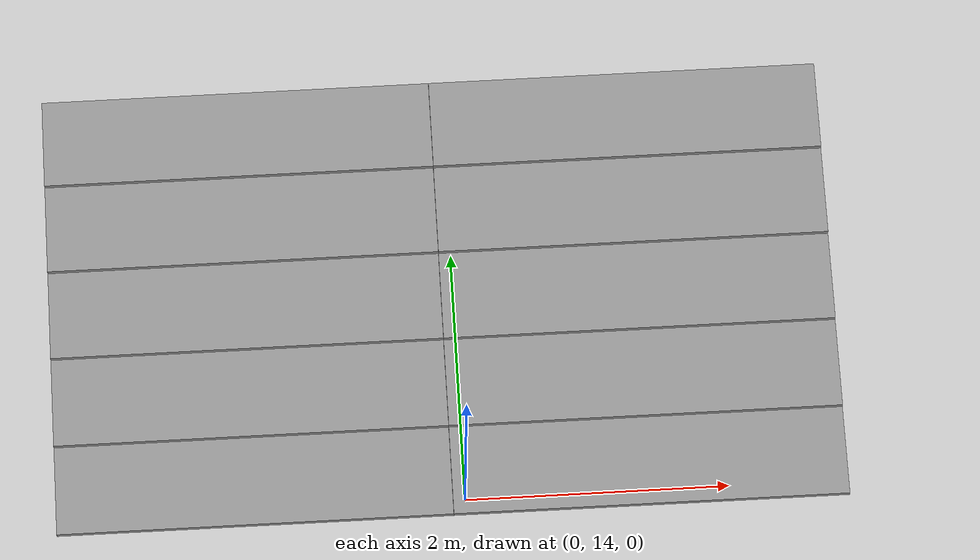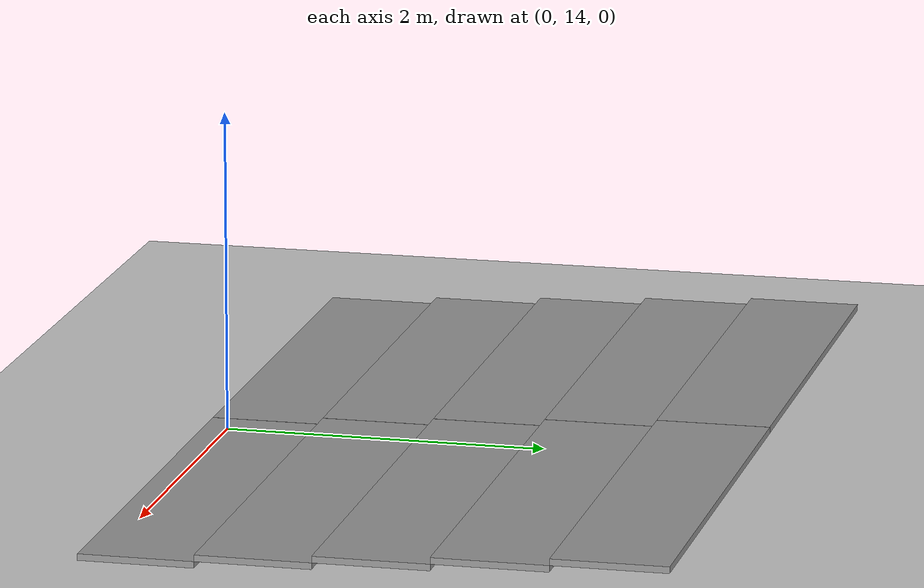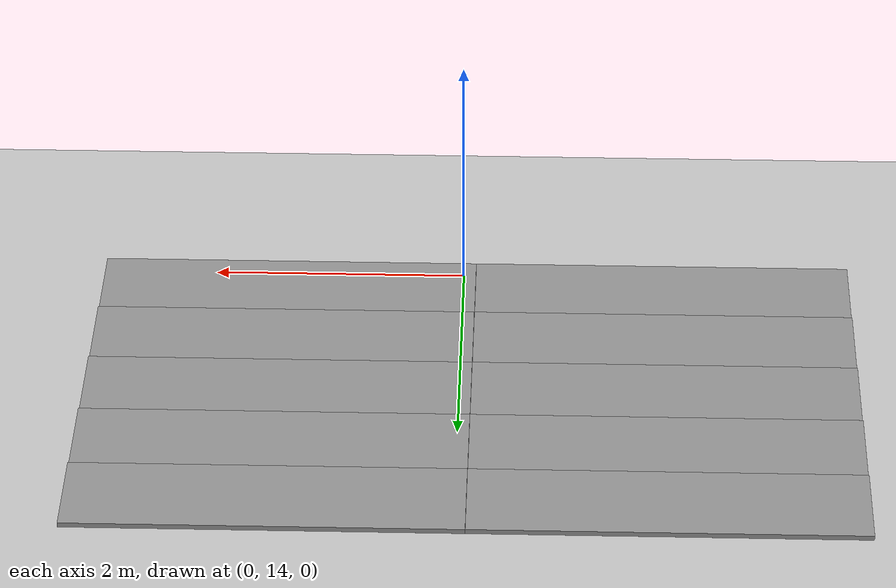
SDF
<sdf version="1.7">
 <world name="world">
  <gravity>0 0 -9.8</gravity>
  <physics name="default_physics" default="0" type="ode">
   <max_step_size>0.001</max_step_size>
   <real_time_factor>1</real_time_factor>
   <real_time_update_rate>1000</real_time_update_rate>
  </physics>
  <scene><ambient>0.6 0.6 0.6 1</ambient><background>0.4 0.4 0.4 1</background><shadows>0</shadows></scene>
  <light name="sun" type="directional">
   <pose>0 0 10 0 -0 0</pose>
   <diffuse>0.8 0.8 0.8 1</diffuse>
   <specular>0.2 0.2 0.2 1</specular>
   <attenuation>
    <range>1000</range>
    <constant>0.9</constant>
    <linear>0.01</linear>
    <quadratic>0.001</quadratic>
   </attenuation>
   <direction>-0.5 0.1 -0.9</direction>
   <spot><inner_angle>0</inner_angle><outer_angle>0</outer_angle><falloff>0</falloff></spot>
  </light>
  <model name="ground_plane">
   <static>1</static>
   <link name="link">
    <collision name="collision">
     <geometry><plane><normal>0 0 1</normal><size>100 100</size></plane></geometry>
     <surface><friction><ode><mu>100</mu><mu2>50</mu2></ode></friction></surface>
    </collision>
    <visual name="visual">
     <cast_shadows>0</cast_shadows>
     <geometry><plane><normal>0 0 1</normal><size>100 100</size></plane></geometry>
     <material>
      <script><uri>file://media/materials/scripts/gazebo.material</uri><name>Gazebo/Grey</name></script>
     </material>
    </visual>
   </link>
   <pose>0 0 -0.1 0 -0 0</pose>
  </model>
  <model name="stair_wide">
   <pose>1.05983 15.2 0 0 -0 3.1415</pose>
   <link name="Stairs_1">
    <visual name="Stairs_1_Visual_0">
     <pose>-0.345 0.97 0.02 0 -0 0</pose>
     <geometry><box><size>3 0.7 0.04</size></box></geometry>
     <material>
      <script><uri>file://media/materials/scripts/gazebo.material</uri><name>Gazebo/Grey</name></script>
      <ambient>1 1 1 1</ambient>
     </material>
     <meta><layer>0</layer></meta>
    </visual>
    <collision name="Stairs_1_Collision_0">
     <geometry><box><size>3 0.7 0.04</size></box></geometry>
     <pose>-0.345 0.97 0.02 0 -0 0</pose>
    </collision>
    <visual name="Stairs_1_Visual_1">
     <pose>-0.345 0.27 0.06 0 -0 0</pose>
     <geometry><box><size>3 0.7 0.04</size></box></geometry>
     <material>
      <script><uri>file://media/materials/scripts/gazebo.material</uri><name>Gazebo/Grey</name></script>
      <ambient>1 1 1 1</ambient>
     </material>
     <meta><layer>0</layer></meta>
    </visual>
    <collision name="Stairs_1_Collision_1">
     <geometry><box><size>3 0.7 0.04</size></box></geometry>
     <pose>-0.345 0.27 0.06 0 -0 0</pose>
    </collision>
    <visual name="Stairs_1_Visual_2">
     <pose>-0.345 -0.43 0.1 0 -0 0</pose>
     <geometry><box><size>3 0.7 0.04</size></box></geometry>
     <material>
      <script><uri>file://media/materials/scripts/gazebo.material</uri><name>Gazebo/Grey</name></script>
      <ambient>1 1 1 1</ambient>
     </material>
     <meta><layer>0</layer></meta>
    </visual>
    <collision name="Stairs_1_Collision_2">
     <geometry><box><size>3 0.7 0.04</size></box></geometry>
     <pose>-0.345 -0.43 0.1 0 -0 0</pose>
    </collision>
    <visual name="Stairs_1_Visual_3">
     <pose>-0.345 -1.13 0.14 0 -0 0</pose>
     <geometry><box><size>3 0.7 0.04</size></box></geometry>
     <material>
      <script><uri>file://media/materials/scripts/gazebo.material</uri><name>Gazebo/Grey</name></script>
      <ambient>1 1 1 1</ambient>
     </material>
     <meta><layer>0</layer></meta>
    </visual>
    <collision name="Stairs_1_Collision_3">
     <geometry><box><size>3 0.7 0.04</size></box></geometry>
     <pose>-0.345 -1.13 0.14 0 -0 0</pose>
    </collision>
    <visual name="Stairs_1_Visual_4">
     <pose>-0.345 -1.83 0.18 0 -0 0</pose>
     <geometry><box><size>3 0.7 0.04</size></box></geometry>
     <material>
      <script><uri>file://media/materials/scripts/gazebo.material</uri><name>Gazebo/Grey</name></script>
      <ambient>1 1 1 1</ambient>
     </material>
     <meta><layer>0</layer></meta>
    </visual>
    <collision name="Stairs_1_Collision_4">
     <geometry><box><size>3 0.7 0.04</size></box></geometry>
     <pose>-0.345 -1.83 0.18 0 -0 0</pose>
    </collision>
   </link>
   <static>1</static>
  </model>
  <model name="CGMClassic_1"/>
  <model name="StorageRack_1"/>
  <model name="CGMClassic_2"/>
  <model name="Chair_1"/>
  <model name="Chair_2"/>
  <model name="Scrubs_1"/>
  <model name="Scrubs_2"/>
  <model name="PatientWheelChair_1"/>
  <model name="Scrubs_3"/>
  <model name="WhiteChipChair_1"/>
  <model name="TrolleyBed_1"/>
  <model name="SurgicalTrolley_1"/>
  <model name="CGMClassic_3"/>
  <model name="PotatoChipChair_1"/>
  <model name="PotatoChipChair_2"/>
  <model name="PotatoChipChair_3"/>
  <model name="PotatoChipChair_4"/>
  <model name="PotatoChipChair_5"/>
  <model name="PotatoChipChair_6"/>
  <model name="PotatoChipChair_7"/>
  <model name="PotatoChipChair_8"/>
  <model name="VisitorKidSit_1"/>
  <model name="FemaleVisitorSit_1"/>
  <model name="AdjTable_1"/>
  <model name="PotatoChipChair_9"/>
  <model name="PotatoChipChair_10"/>
  <model name="PotatoChipChair_11"/>
  <model name="PotatoChipChair_12"/>
  <model name="PotatoChipChair_13"/>
  <model name="PotatoChipChair_14"/>
  <model name="PotatoChipChair_15"/>
  <model name="PotatoChipChair_16"/>
  <model name="MopCart3_1"/>
  <model name="MaleVisitorSit_1"/>
  <model name="Drawer_1"/>
  <model name="Drawer_2"/>
  <model name="OfficeChairBlack_1"/>
  <model name="OfficeChairBlack_2"/>
  <model name="AdjTable_2"/>
  <model name="Drawer_3"/>
  <model name="Drawer_4"/>
  <model name="ElderLadyPatient_1"/>
  <model name="ElderLadyPatient_2"/>
  <model name="CGMClassic_4"/>
  <model name="InstrumentCart1_1"/>
  <model name="ElderMalePatient_1"/>
  <model name="InstrumentCart2_1"/>
  <model name="InstrumentCart2_2"/>
  <model name="MetalCabinet_1"/>
  <model name="MetalCabinet_2"/>
  <model name="CGMClassic_5"/>
  <model name="CGMClassic_6"/>
  <model name="BedTable_1"/>
  <model name="BedTable_2"/>
  <model name="BedsideTable_1"/>
  <model name="AnesthesiaMachine_1"/>
  <model name="TrolleyBedPatient_1"/>
  <model name="Scrubs_4"/>
  <model name="Shower_1"/>
  <model name="Shower_2"/>
  <model name="SurgicalTrolley_2"/>
  <model name="SurgicalTrolley_3"/>
  <model name="SurgicalTrolleyMed_1"/>
  <model name="Scrubs_5"/>
  <model name="InstrumentCart1_2"/>
  <model name="InstrumentCart2_3"/>
  <model name="StorageRackCovered_1"/>
  <model name="StorageRack_2"/>
  <model name="KitchenSink_1"/>
  <model name="KitchenSink_2"/>
  <model name="Toilet_1"/>
  <model name="Toilet_2"/>
  <model name="Toilet_3"/>
  <model name="Toilet_4"/>
  <model name="Toilet_5"/>
  <model name="Toilet_6"/>
  <model name="CGMClassic_7"/>
  <model name="CGMClassic_8"/>
  <model name="MetalCabinet_3"/>
  <model name="MetalCabinet_4"/>
  <model name="ParkingTrolleyMin_1"/>
  <model name="PatientFSit_1"/>
  <model name="MaleVisitorOnPhone_1"/>
  <model name="FemaleVisitor_1"/>
  <model name="MaleVisitorSit_2"/>
  <model name="Scrubs_6"/>
  <model name="MalePatientBed_1"/>
  <model name="CGMClassic_9"/>
  <model name="StorageRackCoverOpen_1"/>
  <model name="StorageRack_3"/>
  <model name="StorageRack_4"/>
  <model name="StorageRackCovered_2"/>
  <model name="FemaleVisitorSit_2"/>
  <model name="InstrumentCart1_3"/>
  <model name="ParkingTrolleyMax_1"/>
  <model name="ElderMalePatient_2"/>
  <model name="Chair_3"/>
  <model name="XRayMachine_1"/>
  <model name="IVStand_1"/>
  <model name="BloodPressureMonitor_1"/>
  <model name="IVStand_2"/>
  <model name="BMWCart_1"/>
  <model name="Scrubs_7"/>
  <model name="BPCart_1"/>
  <model name="BPCart_2"/>
  <model name="BPCart_3"/>
  <model name="BPCart_4"/>
  <model name="VendingMachine_1"/>
  <model name="VendingMachine_2"/>
  <model name="Chair_4"/>
  <magnetic_field>6e-06 2.3e-05 -4.2e-05</magnetic_field>
  <atmosphere type="adiabatic"/>
  <spherical_coordinates>
   <surface_model>EARTH_WGS84</surface_model>
   <latitude_deg>0</latitude_deg>
   <longitude_deg>0</longitude_deg>
   <elevation>0</elevation>
   <heading_deg>0</heading_deg>
  </spherical_coordinates>
  <model name="stair_wide_clone">
   <pose>-1.94192 15.1997 0 0 -0 3.1415</pose>
   <link name="Stairs_1">
    <visual name="Stairs_1_Visual_0">
     <pose>-0.345 0.97 0.02 0 -0 0</pose>
     <geometry><box><size>3 0.7 0.04</size></box></geometry>
     <material>
      <script><uri>file://media/materials/scripts/gazebo.material</uri><name>Gazebo/Grey</name></script>
      <ambient>1 1 1 1</ambient>
     </material>
     <meta><layer>0</layer></meta>
    </visual>
    <collision name="Stairs_1_Collision_0">
     <geometry><box><size>3 0.7 0.04</size></box></geometry>
     <pose>-0.345 0.97 0.02 0 -0 0</pose>
    </collision>
    <visual name="Stairs_1_Visual_1">
     <pose>-0.345 0.27 0.06 0 -0 0</pose>
     <geometry><box><size>3 0.7 0.04</size></box></geometry>
     <material>
      <script><uri>file://media/materials/scripts/gazebo.material</uri><name>Gazebo/Grey</name></script>
      <ambient>1 1 1 1</ambient>
     </material>
     <meta><layer>0</layer></meta>
    </visual>
    <collision name="Stairs_1_Collision_1">
     <geometry><box><size>3 0.7 0.04</size></box></geometry>
     <pose>-0.345 0.27 0.06 0 -0 0</pose>
    </collision>
    <visual name="Stairs_1_Visual_2">
     <pose>-0.345 -0.43 0.1 0 -0 0</pose>
     <geometry><box><size>3 0.7 0.04</size></box></geometry>
     <material>
      <script><uri>file://media/materials/scripts/gazebo.material</uri><name>Gazebo/Grey</name></script>
      <ambient>1 1 1 1</ambient>
     </material>
     <meta><layer>0</layer></meta>
    </visual>
    <collision name="Stairs_1_Collision_2">
     <geometry><box><size>3 0.7 0.04</size></box></geometry>
     <pose>-0.345 -0.43 0.1 0 -0 0</pose>
    </collision>
    <visual name="Stairs_1_Visual_3">
     <pose>-0.345 -1.13 0.14 0 -0 0</pose>
     <geometry><box><size>3 0.7 0.04</size></box></geometry>
     <material>
      <script><uri>file://media/materials/scripts/gazebo.material</uri><name>Gazebo/Grey</name></script>
      <ambient>1 1 1 1</ambient>
     </material>
     <meta><layer>0</layer></meta>
    </visual>
    <collision name="Stairs_1_Collision_3">
     <geometry><box><size>3 0.7 0.04</size></box></geometry>
     <pose>-0.345 -1.13 0.14 0 -0 0</pose>
    </collision>
    <visual name="Stairs_1_Visual_4">
     <pose>-0.345 -1.83 0.18 0 -0 0</pose>
     <geometry><box><size>3 0.7 0.04</size></box></geometry>
     <material>
      <script><uri>file://media/materials/scripts/gazebo.material</uri><name>Gazebo/Grey</name></script>
      <ambient>1 1 1 1</ambient>
     </material>
     <meta><layer>0</layer></meta>
    </visual>
    <collision name="Stairs_1_Collision_4">
     <geometry><box><size>3 0.7 0.04</size></box></geometry>
     <pose>-0.345 -1.83 0.18 0 -0 0</pose>
    </collision>
   </link>
   <static>1</static>
  </model>
 </world>
</sdf>
